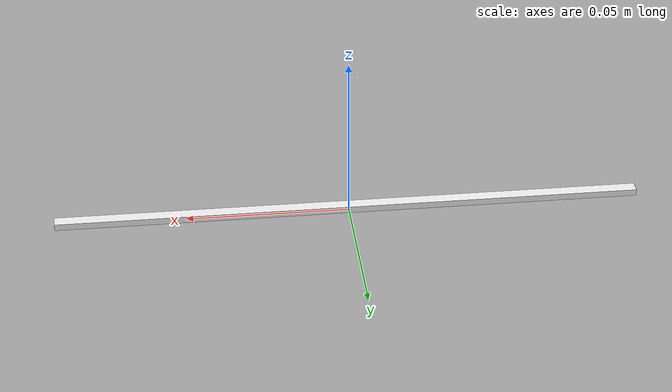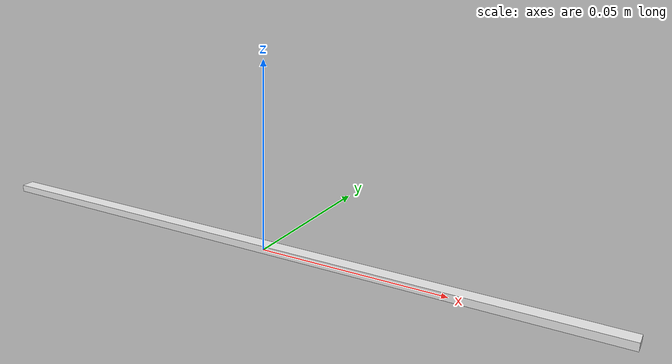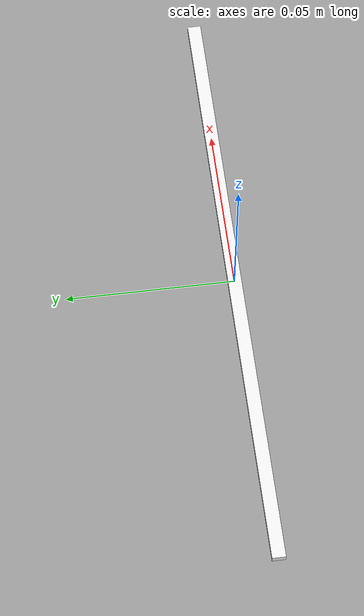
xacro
<?xml version="1.0" ?>
<robot name="box" xmlns:xacro="http://www.ros.org/wiki/xacro">
	<xacro:property name="grid_size" value="0.180"/>

	<link name="base_link">
		<visual>
			<origin xyz="0 0 0.001" rpy="0 0 0"/>
			<geometry>
				<box size="${grid_size} 0.004 0.002"/>
			</geometry>
		</visual>

		<inertial>
			<origin xyz="0 0 0" rpy="0 0 0"/>
			<mass value="1e-5"/>
			<inertia
        		ixx="1e-6" ixy="0.0" ixz="0.0"
        		iyy="1e-6" iyz="0.0"
        		izz="1e-6"/>
		</inertial>
	</link>

	<gazebo reference="base_link">
		<turnGravityOff>true</turnGravityOff>
		<mu1>1000000.0</mu1>
		<mu2>1000000.0</mu2>
		<material>Gazebo/White</material>
	</gazebo>
</robot>
